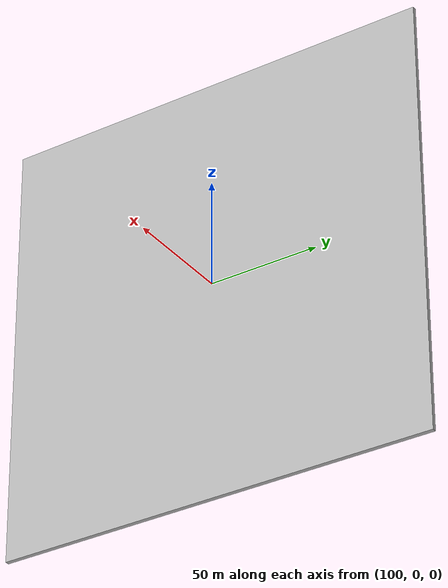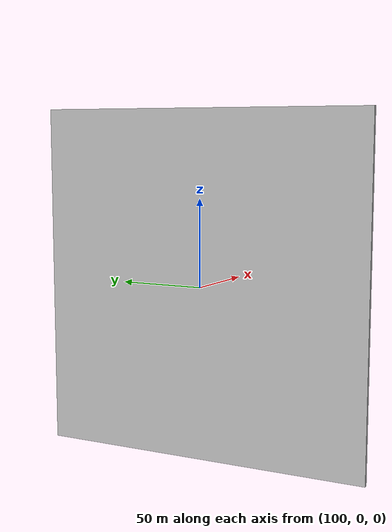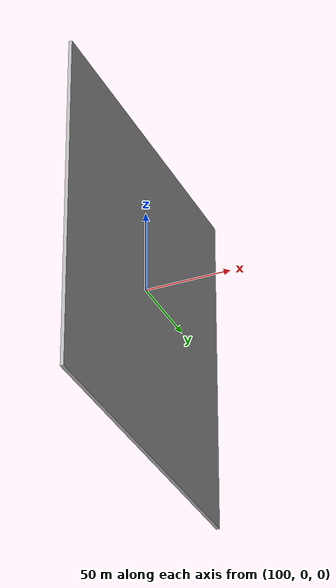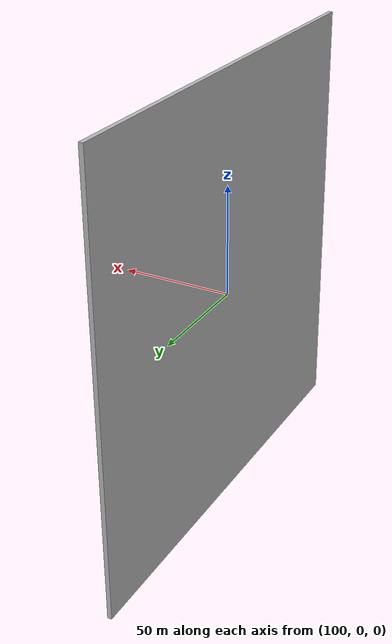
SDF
<?xml version="1.0" ?>
<sdf version="1.6">
  <model name="picture_wall">
  <static>false</static>
    <link name="link">
      <visual name="visual">
         <geometry>
           <mesh>
             <uri>model://picture_wall/picture_wall.dae</uri>
           </mesh>
         </geometry>
        <material>
        </material>
       </visual>
    </link>
  </model>
</sdf>
